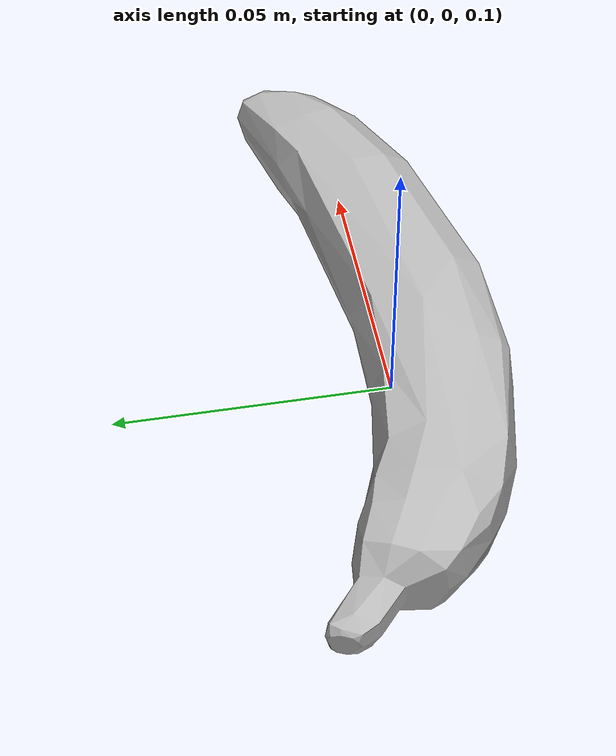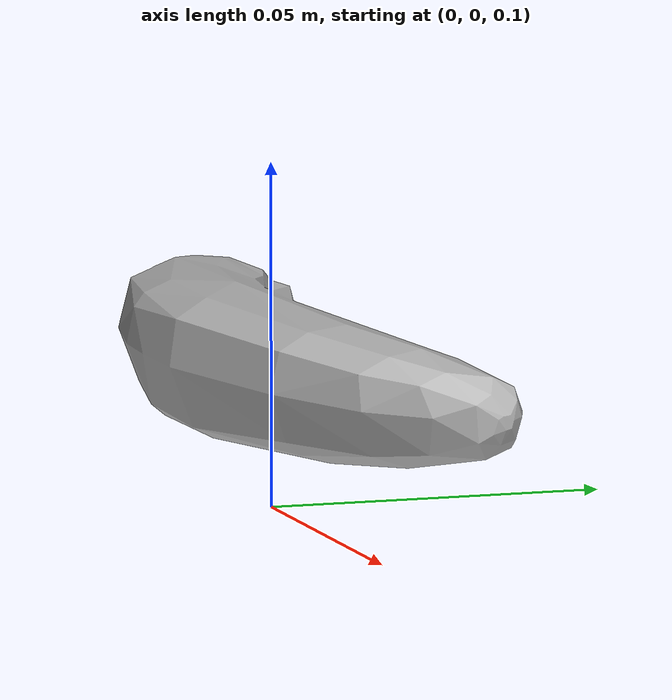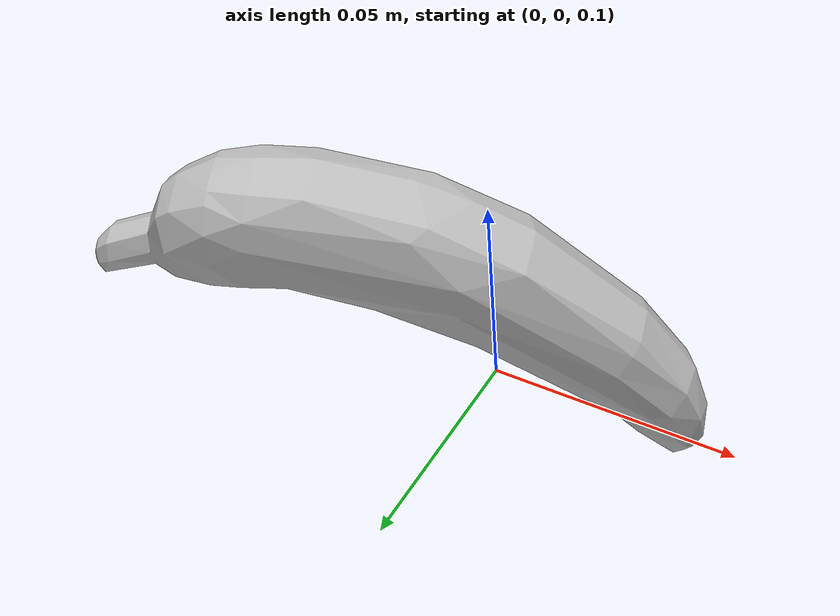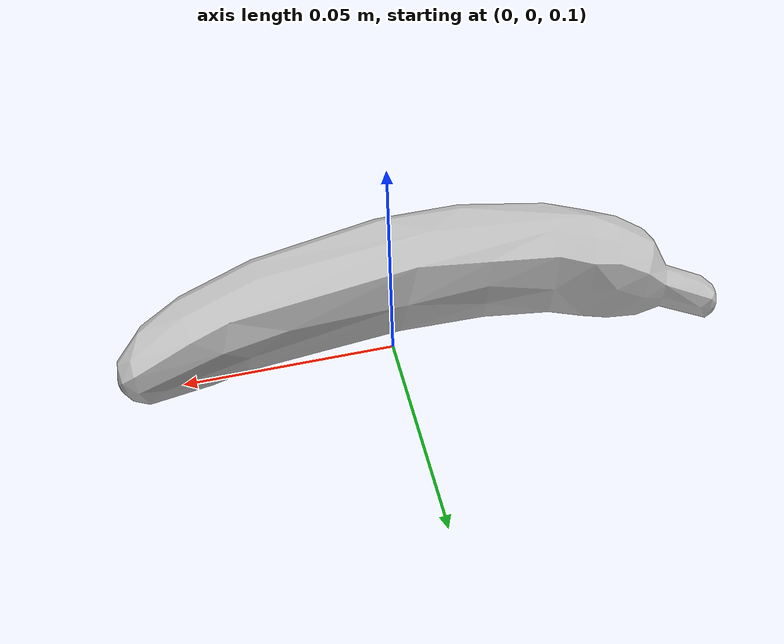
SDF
<?xml version='1.0' ?>
<sdf version="1.6">
    <model name="Banana for Scale">
        <static>false</static>
        <link name="link">
            <!-- ~120 g fruit; COM near mesh anchor. Inertia: uniform box sx=0.22 sy=0.06 sz=0.06 m (bounding approx). -->
            <inertial>
                <pose>0 0 0.12 0 0 0</pose>
                <mass>0.118</mass>
                <inertia>
                    <ixx>7.08e-05</ixx>
                    <ixy>0</ixy>
                    <ixz>0</ixz>
                    <iyy>5.11e-04</iyy>
                    <iyz>0</iyz>
                    <izz>5.11e-04</izz>
                </inertia>
            </inertial>
            <!-- Primitive box aligned with visual pose; ~bounding volume per inertial comment (0.22×0.06×0.06 m). -->
            <collision name="collision">
                <pose>0 0 0.12 0 0 1.5708</pose>
                <geometry>
                    <box>
                        <size>0.22 0.06 0.06</size>
                    </box>
                </geometry>
            </collision>
            <visual name="visual">
                <pose>0 0 0.12 0 0 1.5708</pose>
                <geometry>
                    <mesh>
                        <uri>meshes/Banana.dae</uri>
                    </mesh>
                </geometry>
            </visual>
        </link>
    </model>
</sdf>
